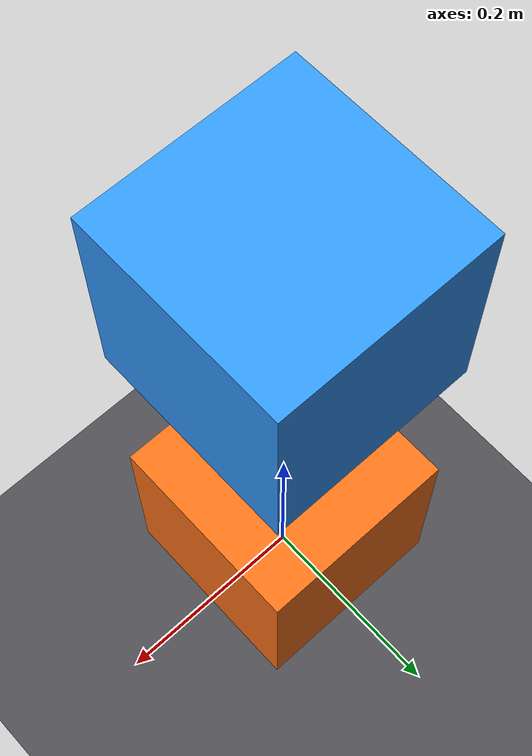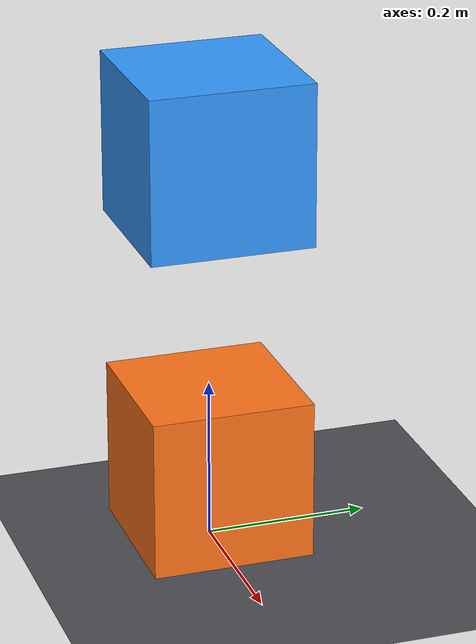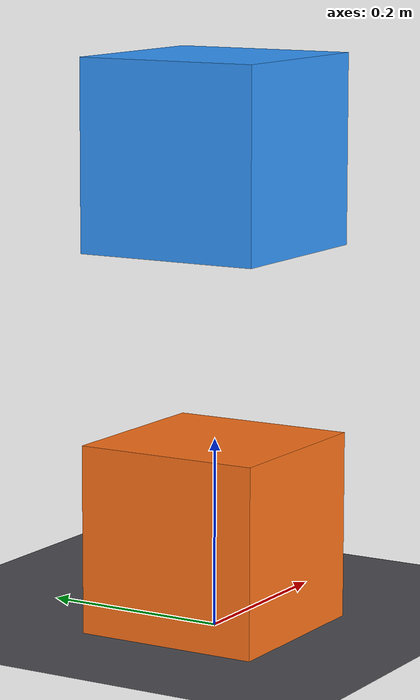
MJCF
<mujoco model="innate_sim_test">

  <option timestep="0.005" gravity="0 0 -9.81"/>

  <worldbody>
    <geom name="ground" type="plane" size="5 5 0.1" friction="0.9 0.01 0.001" rgba="0.3 0.3 0.32 1"/>

    <body name="cube_b" pos="0 0 0.1">
      <freejoint/>
      <inertial pos="0 0 0" mass="1.0" diaginertia="0.006 0.006 0.006"/>
      <geom type="box" size="0.1 0.1 0.1" friction="0.9 0.01 0.001" rgba="1 0.45 0.1 1"/>
    </body>

    <body name="cube_a" pos="0 0 0.5">
      <freejoint/>
      <inertial pos="0 0 0" mass="1.0" diaginertia="0.006 0.006 0.006"/>
      <geom type="box" size="0.1 0.1 0.1" friction="0.9 0.01 0.001" rgba="0.2 0.6 1 1"/>
    </body>
  </worldbody>
</mujoco>
